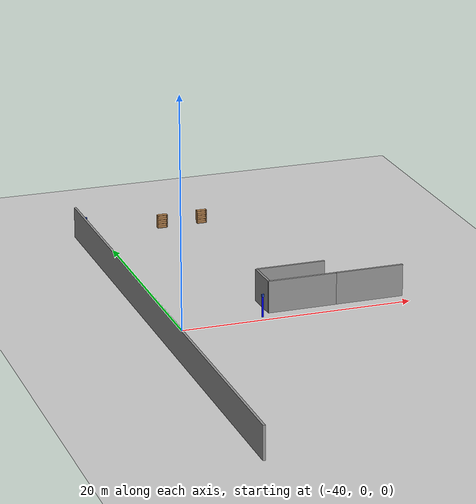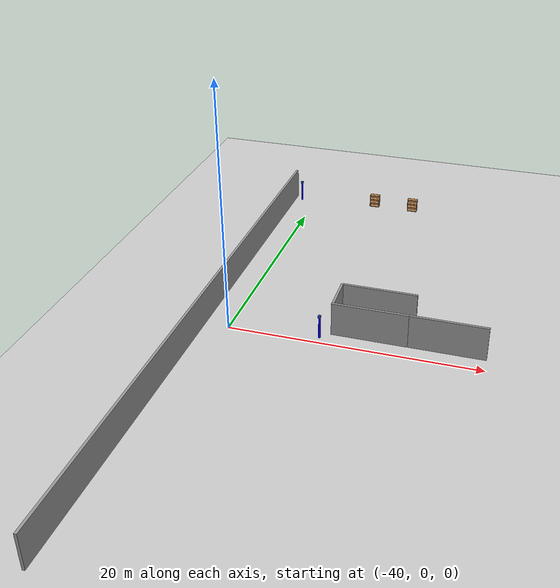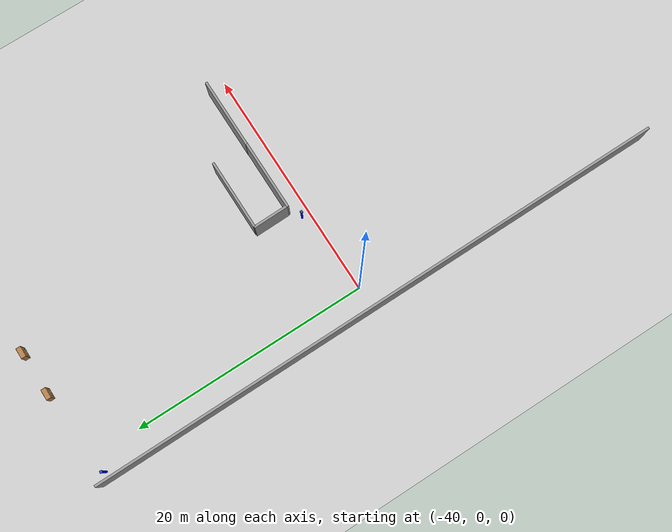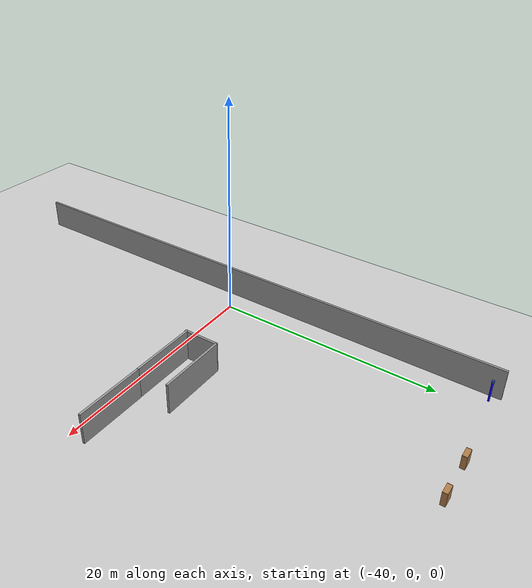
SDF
<sdf version="1.7">
 <world name="simulate_indoor">
  <model name="ground_plane">
   <static>1</static>
   <link name="link">
    <collision name="collision">
     <geometry><plane><normal>0 0 1</normal><size>100 100</size></plane></geometry>
     <surface>
      <contact><collide_bitmask>65535</collide_bitmask></contact>
      <friction><ode><mu>100</mu><mu2>50</mu2></ode></friction>
     </surface>
    </collision>
    <visual name="visual">
     <cast_shadows>0</cast_shadows>
     <geometry><plane><normal>0 0 1</normal><size>100 100</size></plane></geometry>
     <material>
      <script><uri>file://media/materials/scripts/gazebo.material</uri><name>Gazebo/Grey</name></script>
     </material>
    </visual>
   </link>
  </model>
  <model name="grey_wall_long">
   <static>1</static>
   <link name="link">
    <pose>0 0 1.4 0 -0 0</pose>
    <collision name="collision"><geometry><box><size>50 0.2 2.8</size></box></geometry></collision>
    <visual name="visual">
     <cast_shadows>0</cast_shadows>
     <geometry><box><size>50 0.2 2.8</size></box></geometry>
     <material>
      <script>
       <uri>model://grey_wall_long/materials/scripts</uri>
       <uri>model://grey_wall_long/materials/textures</uri>
       <name>vrc/grey_wall_long</name>
      </script>
     </material>
    </visual>
   </link>
   <pose>-42.0584 -0.541294 0 0 0 -1.56707</pose>
  </model>
  <model name="grey_wall_short">
   <static>1</static>
   <link name="link">
    <pose>0 0 1.4 0 -0 0</pose>
    <collision name="collision"><geometry><box><size>3 0.2 2.8</size></box></geometry></collision>
    <visual name="visual">
     <cast_shadows>0</cast_shadows>
     <geometry><box><size>3 0.2 2.8</size></box></geometry>
     <material>
      <script>
       <uri>model://grey_wall_short/materials/scripts</uri>
       <uri>model://grey_wall_short/materials/textures</uri>
       <name>vrc/grey_wall_short</name>
      </script>
     </material>
    </visual>
   </link>
   <pose>-32.0114 2.97374 0 0 0 -1.5524</pose>
  </model>
  <model name="grey_wall_media">
   <static>1</static>
   <link name="link">
    <pose>0 0 1.4 0 -0 0</pose>
    <collision name="collision"><geometry><box><size>6 0.2 2.8</size></box></geometry></collision>
    <visual name="visual">
     <cast_shadows>0</cast_shadows>
     <geometry><box><size>6 0.2 2.8</size></box></geometry>
     <material>
      <script>
       <uri>model://grey_wall_media/materials/scripts</uri>
       <uri>model://grey_wall_media/materials/textures</uri>
       <name>vrc/grey_wall_media</name>
      </script>
     </material>
    </visual>
   </link>
   <pose>-29 4.42421 0.00987 0 -0 0</pose>
  </model>
  <model name="grey_wall_media_clone_0">
   <static>1</static>
   <link name="link">
    <pose>0 0 1.4 0 -0 0</pose>
    <collision name="collision"><geometry><box><size>6 0.2 2.8</size></box></geometry></collision>
    <visual name="visual">
     <cast_shadows>0</cast_shadows>
     <geometry><box><size>6 0.2 2.8</size></box></geometry>
     <material>
      <script>
       <uri>model://grey_wall_media/materials/scripts</uri>
       <uri>model://grey_wall_media/materials/textures</uri>
       <name>vrc/grey_wall_media</name>
      </script>
     </material>
    </visual>
   </link>
   <pose>-29.0686 1.44223 0.00987 0 -0 0</pose>
  </model>
  <model name="grey_wall_media_clone_1">
   <static>1</static>
   <link name="link">
    <pose>0 0 1.4 0 -0 0</pose>
    <collision name="collision"><geometry><box><size>6 0.2 2.8</size></box></geometry></collision>
    <visual name="visual">
     <cast_shadows>0</cast_shadows>
     <geometry><box><size>6 0.2 2.8</size></box></geometry>
     <material>
      <script>
       <uri>model://grey_wall_media/materials/scripts</uri>
       <uri>model://grey_wall_media/materials/textures</uri>
       <name>vrc/grey_wall_media</name>
      </script>
     </material>
    </visual>
   </link>
   <pose>-23.1024 1.45669 0.00987 0 -0 0</pose>
  </model>
  <model name="Bookshelf">
   <static>1</static>
   <link name="link">
    <inertial><mass>1</mass></inertial>
    <collision name="back">
     <pose>0 0.005 0.6 0 -0 0</pose>
     <geometry><box><size>0.9 0.01 1.2</size></box></geometry>
    </collision>
    <visual name="visual1">
     <pose>0 0.005 0.6 0 -0 0</pose>
     <geometry><box><size>0.9 0.01 1.2</size></box></geometry>
     <material>
      <diffuse>1 1 1 1</diffuse>
      <script><uri>file://media/materials/scripts/gazebo.material</uri><name>Gazebo/Wood</name></script>
      <pbr><metal><albedo_map>model://Bookshelf/bookshelf_diffuse.jpg</albedo_map></metal></pbr>
     </material>
    </visual>
    <collision name="left_side">
     <pose>0.45 -0.195 0.6 0 -0 0</pose>
     <geometry><box><size>0.02 0.4 1.2</size></box></geometry>
    </collision>
    <visual name="visual2">
     <pose>0.45 -0.195 0.6 0 -0 0</pose>
     <geometry><box><size>0.02 0.4 1.2</size></box></geometry>
     <material>
      <diffuse>1 1 1 1</diffuse>
      <script><uri>file://media/materials/scripts/gazebo.material</uri><name>Gazebo/Wood</name></script>
      <pbr><metal><albedo_map>model://Bookshelf/bookshelf_diffuse.jpg</albedo_map></metal></pbr>
     </material>
    </visual>
    <collision name="right_side">
     <pose>-0.45 -0.195 0.6 0 -0 0</pose>
     <geometry><box><size>0.02 0.4 1.2</size></box></geometry>
    </collision>
    <visual name="visual3">
     <pose>-0.45 -0.195 0.6 0 -0 0</pose>
     <geometry><box><size>0.02 0.4 1.2</size></box></geometry>
     <material>
      <diffuse>1 1 1 1</diffuse>
      <script><uri>file://media/materials/scripts/gazebo.material</uri><name>Gazebo/Wood</name></script>
      <pbr><metal><albedo_map>model://Bookshelf/bookshelf_diffuse.jpg</albedo_map></metal></pbr>
     </material>
    </visual>
    <collision name="bottom">
     <pose>0 -0.195 0.03 0 -0 0</pose>
     <geometry><box><size>0.88 0.4 0.06</size></box></geometry>
    </collision>
    <visual name="visual4">
     <pose>0 -0.195 0.03 0 -0 0</pose>
     <geometry><box><size>0.88 0.4 0.06</size></box></geometry>
     <material>
      <diffuse>1 1 1 1</diffuse>
      <script><uri>file://media/materials/scripts/gazebo.material</uri><name>Gazebo/Wood</name></script>
      <pbr><metal><albedo_map>model://Bookshelf/bookshelf_diffuse.jpg</albedo_map></metal></pbr>
     </material>
    </visual>
    <collision name="top">
     <pose>0 -0.195 1.19 0 -0 0</pose>
     <geometry><box><size>0.88 0.4 0.02</size></box></geometry>
    </collision>
    <visual name="visual5">
     <pose>0 -0.195 1.19 0 -0 0</pose>
     <geometry><box><size>0.88 0.4 0.02</size></box></geometry>
     <material>
      <diffuse>1 1 1 1</diffuse>
      <script><uri>file://media/materials/scripts/gazebo.material</uri><name>Gazebo/Wood</name></script>
      <pbr><metal><albedo_map>model://Bookshelf/bookshelf_diffuse.jpg</albedo_map></metal></pbr>
     </material>
    </visual>
    <collision name="low_shelf">
     <pose>0 -0.195 0.43 0 -0 0</pose>
     <geometry><box><size>0.88 0.4 0.02</size></box></geometry>
    </collision>
    <visual name="visual6">
     <pose>0 -0.195 0.43 0 -0 0</pose>
     <geometry><box><size>0.88 0.4 0.02</size></box></geometry>
     <material>
      <diffuse>1 1 1 1</diffuse>
      <script><uri>file://media/materials/scripts/gazebo.material</uri><name>Gazebo/Wood</name></script>
      <pbr><metal><albedo_map>model://Bookshelf/bookshelf_diffuse.jpg</albedo_map></metal></pbr>
     </material>
    </visual>
    <collision name="high_shelf">
     <pose>0 -0.195 0.8 0 -0 0</pose>
     <geometry><box><size>0.88 0.4 0.02</size></box></geometry>
    </collision>
    <visual name="visual7">
     <pose>0 -0.195 0.8 0 -0 0</pose>
     <geometry><box><size>0.88 0.4 0.02</size></box></geometry>
     <material>
      <diffuse>1 1 1 1</diffuse>
      <script><uri>file://media/materials/scripts/gazebo.material</uri><name>Gazebo/Wood</name></script>
      <pbr><metal><albedo_map>model://Bookshelf/bookshelf_diffuse.jpg</albedo_map></metal></pbr>
     </material>
    </visual>
   </link>
   <pose>-30.3238 24.6424 -0.021454 0 -0 0</pose>
  </model>
  <model name="Bookshelf_clone">
   <static>1</static>
   <link name="link">
    <inertial><mass>1</mass></inertial>
    <collision name="back">
     <pose>0 0.005 0.6 0 -0 0</pose>
     <geometry><box><size>0.9 0.01 1.2</size></box></geometry>
    </collision>
    <visual name="visual1">
     <pose>0 0.005 0.6 0 -0 0</pose>
     <geometry><box><size>0.9 0.01 1.2</size></box></geometry>
     <material>
      <diffuse>1 1 1 1</diffuse>
      <script><uri>file://media/materials/scripts/gazebo.material</uri><name>Gazebo/Wood</name></script>
      <pbr><metal><albedo_map>model://Bookshelf/bookshelf_diffuse.jpg</albedo_map></metal></pbr>
     </material>
    </visual>
    <collision name="left_side">
     <pose>0.45 -0.195 0.6 0 -0 0</pose>
     <geometry><box><size>0.02 0.4 1.2</size></box></geometry>
    </collision>
    <visual name="visual2">
     <pose>0.45 -0.195 0.6 0 -0 0</pose>
     <geometry><box><size>0.02 0.4 1.2</size></box></geometry>
     <material>
      <diffuse>1 1 1 1</diffuse>
      <script><uri>file://media/materials/scripts/gazebo.material</uri><name>Gazebo/Wood</name></script>
      <pbr><metal><albedo_map>model://Bookshelf/bookshelf_diffuse.jpg</albedo_map></metal></pbr>
     </material>
    </visual>
    <collision name="right_side">
     <pose>-0.45 -0.195 0.6 0 -0 0</pose>
     <geometry><box><size>0.02 0.4 1.2</size></box></geometry>
    </collision>
    <visual name="visual3">
     <pose>-0.45 -0.195 0.6 0 -0 0</pose>
     <geometry><box><size>0.02 0.4 1.2</size></box></geometry>
     <material>
      <diffuse>1 1 1 1</diffuse>
      <script><uri>file://media/materials/scripts/gazebo.material</uri><name>Gazebo/Wood</name></script>
      <pbr><metal><albedo_map>model://Bookshelf/bookshelf_diffuse.jpg</albedo_map></metal></pbr>
     </material>
    </visual>
    <collision name="bottom">
     <pose>0 -0.195 0.03 0 -0 0</pose>
     <geometry><box><size>0.88 0.4 0.06</size></box></geometry>
    </collision>
    <visual name="visual4">
     <pose>0 -0.195 0.03 0 -0 0</pose>
     <geometry><box><size>0.88 0.4 0.06</size></box></geometry>
     <material>
      <diffuse>1 1 1 1</diffuse>
      <script><uri>file://media/materials/scripts/gazebo.material</uri><name>Gazebo/Wood</name></script>
      <pbr><metal><albedo_map>model://Bookshelf/bookshelf_diffuse.jpg</albedo_map></metal></pbr>
     </material>
    </visual>
    <collision name="top">
     <pose>0 -0.195 1.19 0 -0 0</pose>
     <geometry><box><size>0.88 0.4 0.02</size></box></geometry>
    </collision>
    <visual name="visual5">
     <pose>0 -0.195 1.19 0 -0 0</pose>
     <geometry><box><size>0.88 0.4 0.02</size></box></geometry>
     <material>
      <diffuse>1 1 1 1</diffuse>
      <script><uri>file://media/materials/scripts/gazebo.material</uri><name>Gazebo/Wood</name></script>
      <pbr><metal><albedo_map>model://Bookshelf/bookshelf_diffuse.jpg</albedo_map></metal></pbr>
     </material>
    </visual>
    <collision name="low_shelf">
     <pose>0 -0.195 0.43 0 -0 0</pose>
     <geometry><box><size>0.88 0.4 0.02</size></box></geometry>
    </collision>
    <visual name="visual6">
     <pose>0 -0.195 0.43 0 -0 0</pose>
     <geometry><box><size>0.88 0.4 0.02</size></box></geometry>
     <material>
      <diffuse>1 1 1 1</diffuse>
      <script><uri>file://media/materials/scripts/gazebo.material</uri><name>Gazebo/Wood</name></script>
      <pbr><metal><albedo_map>model://Bookshelf/bookshelf_diffuse.jpg</albedo_map></metal></pbr>
     </material>
    </visual>
    <collision name="high_shelf">
     <pose>0 -0.195 0.8 0 -0 0</pose>
     <geometry><box><size>0.88 0.4 0.02</size></box></geometry>
    </collision>
    <visual name="visual7">
     <pose>0 -0.195 0.8 0 -0 0</pose>
     <geometry><box><size>0.88 0.4 0.02</size></box></geometry>
     <material>
      <diffuse>1 1 1 1</diffuse>
      <script><uri>file://media/materials/scripts/gazebo.material</uri><name>Gazebo/Wood</name></script>
      <pbr><metal><albedo_map>model://Bookshelf/bookshelf_diffuse.jpg</albedo_map></metal></pbr>
     </material>
    </visual>
   </link>
   <pose>-34.0714 24.5973 -0.021454 0 -0 0</pose>
  </model>
  <model name="UWB_1">
   <link name="link_1">
    <inertial>
     <mass>1</mass>
     <inertia><ixx>0.145833</ixx><ixy>0</ixy><ixz>0</ixz><iyy>0.145833</iyy><iyz>0</iyz><izz>0.125</izz></inertia>
    </inertial>
    <pose>0 0 0.95 0 -0 0</pose>
    <visual name="visual">
     <geometry><cylinder><radius>0.08</radius><length>1.9</length></cylinder></geometry>
     <material>
      <lighting>1</lighting>
      <script><uri>file://media/materials/scripts/gazebo.material</uri><name>Gazebo/Grey</name></script>
      <shader type="pixel"><normal_map>__default__</normal_map></shader>
      <ambient>0 0 1 1</ambient>
      <diffuse>0 0 1 1</diffuse>
      <specular>0 0 1 1</specular>
      <emissive>0 0 1 1</emissive>
     </material>
    </visual>
    <collision name="collision">
     <geometry><cylinder><radius>0.08</radius><length>1.9</length></cylinder></geometry>
     <surface>
      <friction>
       <ode><mu>1</mu><mu2>1</mu2><fdir1>0 0 0</fdir1><slip1>0</slip1><slip2>0</slip2></ode>
       <torsional>
        <coefficient>1</coefficient>
        <patch_radius>0</patch_radius>
        <surface_radius>0</surface_radius>
        <use_patch_radius>1</use_patch_radius>
        <ode><slip>0</slip></ode>
       </torsional>
      </friction>
      <bounce><restitution_coefficient>0</restitution_coefficient><threshold>1e+06</threshold></bounce>
      <contact>
       <collide_without_contact>0</collide_without_contact>
       <collide_without_contact_bitmask>1</collide_without_contact_bitmask>
       <collide_bitmask>1</collide_bitmask>
       <ode>
        <soft_cfm>0</soft_cfm>
        <soft_erp>0.2</soft_erp>
        <kp>1e+13</kp>
        <kd>1</kd>
        <max_vel>0.01</max_vel>
        <min_depth>0</min_depth>
       </ode>
       <bullet>
        <split_impulse>1</split_impulse>
        <split_impulse_penetration_threshold>-0.01</split_impulse_penetration_threshold>
        <soft_cfm>0</soft_cfm>
        <soft_erp>0.2</soft_erp>
        <kp>1e+13</kp>
        <kd>1</kd>
       </bullet>
      </contact>
     </surface>
    </collision>
   </link>
   <link name="link_2">
    <inertial>
     <mass>1</mass>
     <inertia>
      <ixx>0.166667</ixx>
      <ixy>0</ixy>
      <ixz>0</ixz>
      <iyy>0.166667</iyy>
      <iyz>0</iyz>
      <izz>0.166667</izz>
     </inertia>
    </inertial>
    <pose>0 0 1.9 0 -0 0</pose>
    <visual name="visual">
     <geometry><box><size>0.2 0.2 0.2</size></box></geometry>
     <material>
      <lighting>1</lighting>
      <script><uri>file://media/materials/scripts/gazebo.material</uri><name>Gazebo/Blue</name></script>
      <shader type="pixel"><normal_map>__default__</normal_map></shader>
      <ambient>1 0 0 1</ambient>
      <diffuse>1 0 0 1</diffuse>
      <specular>1 0 0 1</specular>
      <emissive>1 0 0 1</emissive>
     </material>
    </visual>
    <collision name="collision">
     <geometry><box><size>0.2 0.2 0.2</size></box></geometry>
     <surface>
      <friction>
       <ode><mu>1</mu><mu2>1</mu2><fdir1>0 0 0</fdir1><slip1>0</slip1><slip2>0</slip2></ode>
       <torsional>
        <coefficient>1</coefficient>
        <patch_radius>0</patch_radius>
        <surface_radius>0</surface_radius>
        <use_patch_radius>1</use_patch_radius>
        <ode><slip>0</slip></ode>
       </torsional>
      </friction>
      <bounce><restitution_coefficient>0</restitution_coefficient><threshold>1e+06</threshold></bounce>
      <contact>
       <collide_without_contact>0</collide_without_contact>
       <collide_without_contact_bitmask>1</collide_without_contact_bitmask>
       <collide_bitmask>1</collide_bitmask>
       <ode>
        <soft_cfm>0</soft_cfm>
        <soft_erp>0.2</soft_erp>
        <kp>1e+13</kp>
        <kd>1</kd>
        <max_vel>0.01</max_vel>
        <min_depth>0</min_depth>
       </ode>
       <bullet>
        <split_impulse>1</split_impulse>
        <split_impulse_penetration_threshold>-0.01</split_impulse_penetration_threshold>
        <soft_cfm>0</soft_cfm>
        <soft_erp>0.2</soft_erp>
        <kp>1e+13</kp>
        <kd>1</kd>
       </bullet>
      </contact>
     </surface>
    </collision>
   </link>
   <static>1</static>
   <pose>-41.4065 23.6846 0 0 -0 0</pose>
  </model>
  <model name="UWB_6">
   <link name="link_1">
    <inertial>
     <mass>1</mass>
     <inertia><ixx>0.145833</ixx><ixy>0</ixy><ixz>0</ixz><iyy>0.145833</iyy><iyz>0</iyz><izz>0.125</izz></inertia>
    </inertial>
    <pose>0 0 0.95 0 -0 0</pose>
    <visual name="visual">
     <geometry><cylinder><radius>0.08</radius><length>1.9</length></cylinder></geometry>
     <material>
      <lighting>1</lighting>
      <script><uri>file://media/materials/scripts/gazebo.material</uri><name>Gazebo/Grey</name></script>
      <shader type="pixel"><normal_map>__default__</normal_map></shader>
      <ambient>0 0 1 1</ambient>
      <diffuse>0 0 1 1</diffuse>
      <specular>0 0 1 1</specular>
      <emissive>0 0 1 1</emissive>
     </material>
    </visual>
    <collision name="collision">
     <geometry><cylinder><radius>0.08</radius><length>1.9</length></cylinder></geometry>
     <surface>
      <friction>
       <ode><mu>1</mu><mu2>1</mu2><fdir1>0 0 0</fdir1><slip1>0</slip1><slip2>0</slip2></ode>
       <torsional>
        <coefficient>1</coefficient>
        <patch_radius>0</patch_radius>
        <surface_radius>0</surface_radius>
        <use_patch_radius>1</use_patch_radius>
        <ode><slip>0</slip></ode>
       </torsional>
      </friction>
      <bounce><restitution_coefficient>0</restitution_coefficient><threshold>1e+06</threshold></bounce>
      <contact>
       <collide_without_contact>0</collide_without_contact>
       <collide_without_contact_bitmask>1</collide_without_contact_bitmask>
       <collide_bitmask>1</collide_bitmask>
       <ode>
        <soft_cfm>0</soft_cfm>
        <soft_erp>0.2</soft_erp>
        <kp>1e+13</kp>
        <kd>1</kd>
        <max_vel>0.01</max_vel>
        <min_depth>0</min_depth>
       </ode>
       <bullet>
        <split_impulse>1</split_impulse>
        <split_impulse_penetration_threshold>-0.01</split_impulse_penetration_threshold>
        <soft_cfm>0</soft_cfm>
        <soft_erp>0.2</soft_erp>
        <kp>1e+13</kp>
        <kd>1</kd>
       </bullet>
      </contact>
     </surface>
    </collision>
   </link>
   <link name="link_2">
    <inertial>
     <mass>1</mass>
     <inertia>
      <ixx>0.166667</ixx>
      <ixy>0</ixy>
      <ixz>0</ixz>
      <iyy>0.166667</iyy>
      <iyz>0</iyz>
      <izz>0.166667</izz>
     </inertia>
    </inertial>
    <pose>0 0 1.9 0 -0 0</pose>
    <visual name="visual">
     <geometry><box><size>0.2 0.2 0.2</size></box></geometry>
     <material>
      <lighting>1</lighting>
      <script><uri>file://media/materials/scripts/gazebo.material</uri><name>Gazebo/Blue</name></script>
      <shader type="pixel"><normal_map>__default__</normal_map></shader>
      <ambient>1 0 0 1</ambient>
      <diffuse>1 0 0 1</diffuse>
      <specular>1 0 0 1</specular>
      <emissive>1 0 0 1</emissive>
     </material>
    </visual>
    <collision name="collision">
     <geometry><box><size>0.2 0.2 0.2</size></box></geometry>
     <surface>
      <friction>
       <ode><mu>1</mu><mu2>1</mu2><fdir1>0 0 0</fdir1><slip1>0</slip1><slip2>0</slip2></ode>
       <torsional>
        <coefficient>1</coefficient>
        <patch_radius>0</patch_radius>
        <surface_radius>0</surface_radius>
        <use_patch_radius>1</use_patch_radius>
        <ode><slip>0</slip></ode>
       </torsional>
      </friction>
      <bounce><restitution_coefficient>0</restitution_coefficient><threshold>1e+06</threshold></bounce>
      <contact>
       <collide_without_contact>0</collide_without_contact>
       <collide_without_contact_bitmask>1</collide_without_contact_bitmask>
       <collide_bitmask>1</collide_bitmask>
       <ode>
        <soft_cfm>0</soft_cfm>
        <soft_erp>0.2</soft_erp>
        <kp>1e+13</kp>
        <kd>1</kd>
        <max_vel>0.01</max_vel>
        <min_depth>0</min_depth>
       </ode>
       <bullet>
        <split_impulse>1</split_impulse>
        <split_impulse_penetration_threshold>-0.01</split_impulse_penetration_threshold>
        <soft_cfm>0</soft_cfm>
        <soft_erp>0.2</soft_erp>
        <kp>1e+13</kp>
        <kd>1</kd>
       </bullet>
      </contact>
     </surface>
    </collision>
   </link>
   <static>1</static>
   <pose>-32.7977 0.699116 0.006903 0 -0 0</pose>
  </model>
 </world>
</sdf>
